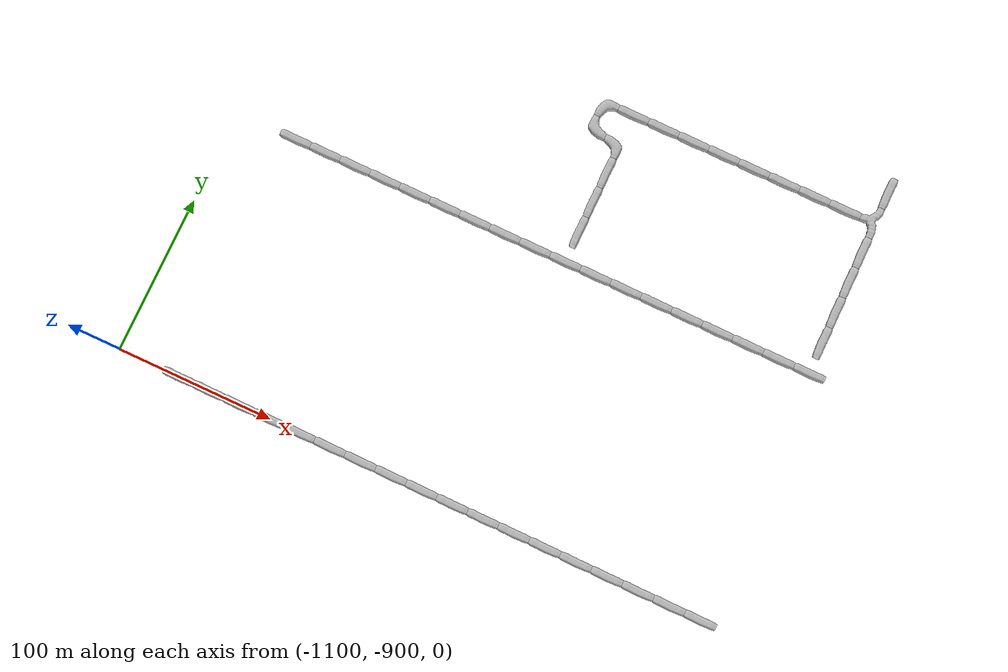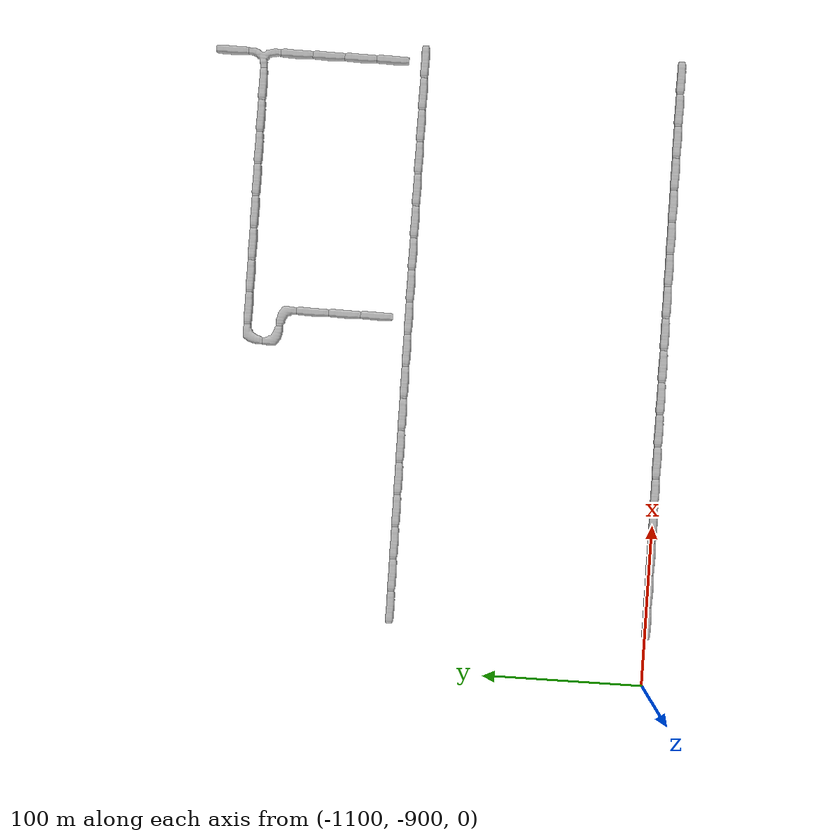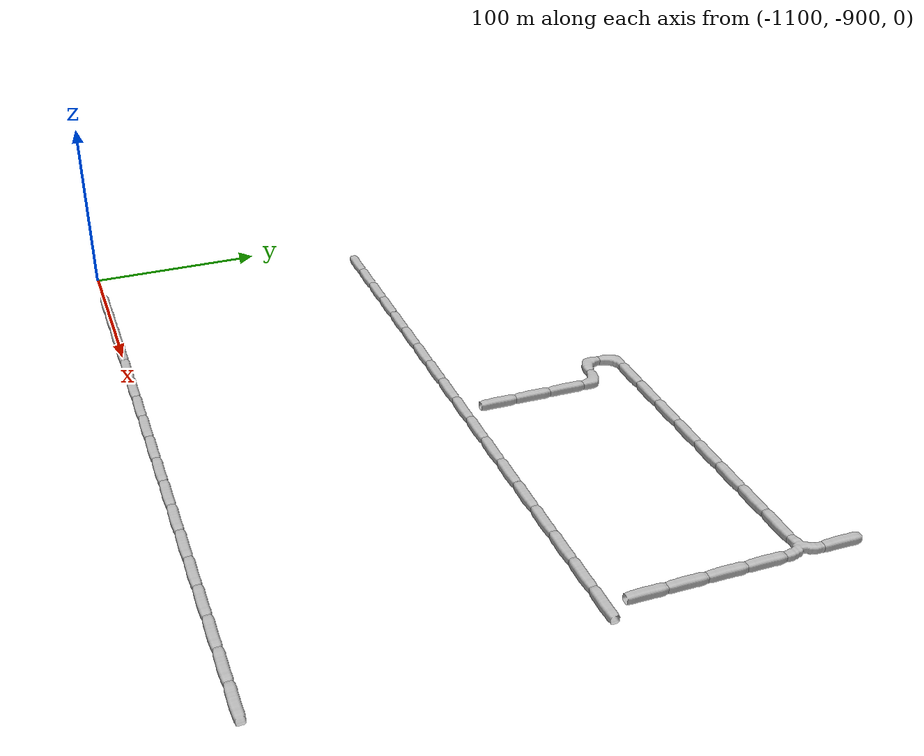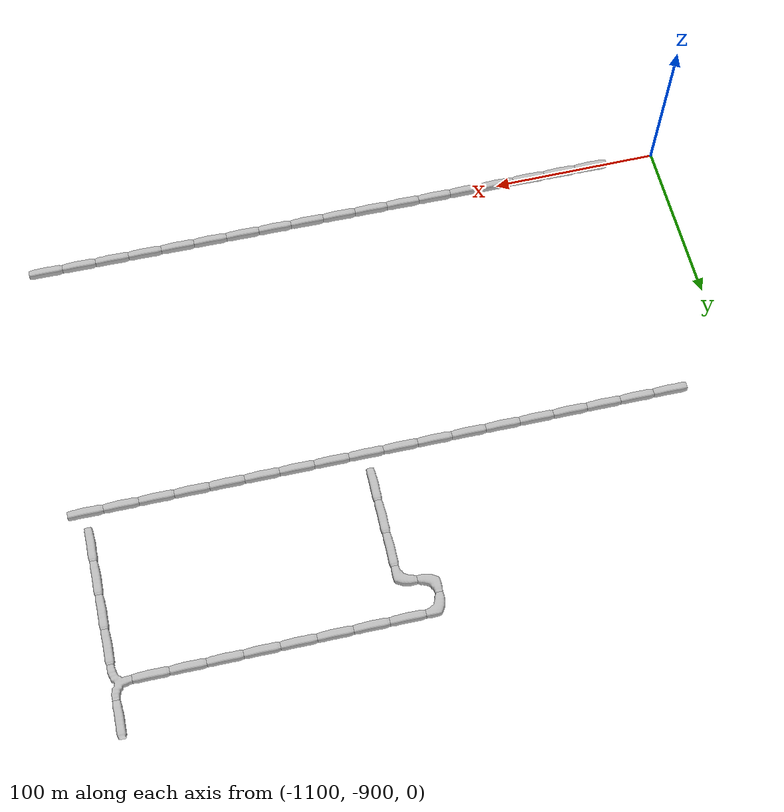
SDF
<sdf version="1.6">
 <world name="cave_32000_64">
  <include>
   <static>true</static>
   <name>cave_-36_-45</name>
   <pose>-720 -900 0 0 0 1.5707963267948966</pose>
   <uri>model://cave_straight_20m</uri>
  </include>
  <include>
   <static>true</static>
   <name>cave_-37_-45</name>
   <pose>-740 -900 0 0 0 1.5707963267948966</pose>
   <uri>model://cave_straight_20m</uri>
  </include>
  <include>
   <static>true</static>
   <name>cave_-38_-45</name>
   <pose>-760 -900 0 0 0 1.5707963267948966</pose>
   <uri>model://cave_straight_20m</uri>
  </include>
  <include>
   <static>true</static>
   <name>cave_-39_-45</name>
   <pose>-780 -900 0 0 0 1.5707963267948966</pose>
   <uri>model://cave_straight_20m</uri>
  </include>
  <include>
   <static>true</static>
   <name>cave_-40_-45</name>
   <pose>-800 -900 0 0 0 1.5707963267948966</pose>
   <uri>model://cave_straight_20m</uri>
  </include>
  <include>
   <static>true</static>
   <name>cave_-41_-45</name>
   <pose>-820 -900 0 0 0 1.5707963267948966</pose>
   <uri>model://cave_straight_20m</uri>
  </include>
  <include>
   <static>true</static>
   <name>cave_-42_-45</name>
   <pose>-840 -900 0 0 0 1.5707963267948966</pose>
   <uri>model://cave_straight_20m</uri>
  </include>
  <include>
   <static>true</static>
   <name>cave_-43_-45</name>
   <pose>-860 -900 0 0 0 1.5707963267948966</pose>
   <uri>model://cave_straight_20m</uri>
  </include>
  <include>
   <static>true</static>
   <name>cave_-44_-45</name>
   <pose>-880 -900 0 0 0 1.5707963267948966</pose>
   <uri>model://cave_straight_20m</uri>
  </include>
  <include>
   <static>true</static>
   <name>cave_-45_-45</name>
   <pose>-900 -900 0 0 0 1.5707963267948966</pose>
   <uri>model://cave_straight_20m</uri>
  </include>
  <include>
   <static>true</static>
   <name>cave_-46_-45</name>
   <pose>-920 -900 0 0 0 1.5707963267948966</pose>
   <uri>model://cave_straight_20m</uri>
  </include>
  <include>
   <static>true</static>
   <name>cave_-47_-45</name>
   <pose>-940 -900 0 0 0 1.5707963267948966</pose>
   <uri>model://cave_straight_20m</uri>
  </include>
  <include>
   <static>true</static>
   <name>cave_-48_-45</name>
   <pose>-960 -900 0 0 0 1.5707963267948966</pose>
   <uri>model://cave_straight_20m</uri>
  </include>
  <include>
   <static>true</static>
   <name>cave_-49_-45</name>
   <pose>-980 -900 0 0 0 1.5707963267948966</pose>
   <uri>model://cave_straight_20m</uri>
  </include>
  <include>
   <static>true</static>
   <name>cave_-50_-45</name>
   <pose>-1000 -900 0 0 0 1.5707963267948966</pose>
   <uri>model://cave_straight_20m</uri>
  </include>
  <include>
   <static>true</static>
   <name>cave_-51_-45</name>
   <pose>-1020 -900 0 0 0 1.5707963267948966</pose>
   <uri>model://cave_straight_20m</uri>
  </include>
  <include>
   <static>true</static>
   <name>cave_-52_-45</name>
   <pose>-1040 -900 0 0 0 1.5707963267948966</pose>
   <uri>model://cave_straight_20m</uri>
  </include>
  <include>
   <static>true</static>
   <name>cave_-53_-45</name>
   <pose>-1060 -900 0 0 0 1.5707963267948966</pose>
   <uri>model://cave_straight_20m</uri>
  </include>
  <include>
   <static>true</static>
   <name>cave_-36_-37</name>
   <pose>-720 -740 0 0 0 1.5707963267948966</pose>
   <uri>model://cave_straight_20m</uri>
  </include>
  <include>
   <static>true</static>
   <name>cave_-37_-37</name>
   <pose>-740 -740 0 0 0 1.5707963267948966</pose>
   <uri>model://cave_straight_20m</uri>
  </include>
  <include>
   <static>true</static>
   <name>cave_-38_-37</name>
   <pose>-760 -740 0 0 0 1.5707963267948966</pose>
   <uri>model://cave_straight_20m</uri>
  </include>
  <include>
   <static>true</static>
   <name>cave_-39_-37</name>
   <pose>-780 -740 0 0 0 1.5707963267948966</pose>
   <uri>model://cave_straight_20m</uri>
  </include>
  <include>
   <static>true</static>
   <name>cave_-40_-37</name>
   <pose>-800 -740 0 0 0 1.5707963267948966</pose>
   <uri>model://cave_straight_20m</uri>
  </include>
  <include>
   <static>true</static>
   <name>cave_-41_-37</name>
   <pose>-820 -740 0 0 0 1.5707963267948966</pose>
   <uri>model://cave_straight_20m</uri>
  </include>
  <include>
   <static>true</static>
   <name>cave_-42_-37</name>
   <pose>-840 -740 0 0 0 1.5707963267948966</pose>
   <uri>model://cave_straight_20m</uri>
  </include>
  <include>
   <static>true</static>
   <name>cave_-43_-37</name>
   <pose>-860 -740 0 0 0 1.5707963267948966</pose>
   <uri>model://cave_straight_20m</uri>
  </include>
  <include>
   <static>true</static>
   <name>cave_-44_-37</name>
   <pose>-880 -740 0 0 0 1.5707963267948966</pose>
   <uri>model://cave_straight_20m</uri>
  </include>
  <include>
   <static>true</static>
   <name>cave_-45_-37</name>
   <pose>-900 -740 0 0 0 1.5707963267948966</pose>
   <uri>model://cave_straight_20m</uri>
  </include>
  <include>
   <static>true</static>
   <name>cave_-46_-37</name>
   <pose>-920 -740 0 0 0 1.5707963267948966</pose>
   <uri>model://cave_straight_20m</uri>
  </include>
  <include>
   <static>true</static>
   <name>cave_-47_-37</name>
   <pose>-940 -740 0 0 0 1.5707963267948966</pose>
   <uri>model://cave_straight_20m</uri>
  </include>
  <include>
   <static>true</static>
   <name>cave_-48_-37</name>
   <pose>-960 -740 0 0 0 1.5707963267948966</pose>
   <uri>model://cave_straight_20m</uri>
  </include>
  <include>
   <static>true</static>
   <name>cave_-49_-37</name>
   <pose>-980 -740 0 0 0 1.5707963267948966</pose>
   <uri>model://cave_straight_20m</uri>
  </include>
  <include>
   <static>true</static>
   <name>cave_-50_-37</name>
   <pose>-1000 -740 0 0 0 1.5707963267948966</pose>
   <uri>model://cave_straight_20m</uri>
  </include>
  <include>
   <static>true</static>
   <name>cave_-51_-37</name>
   <pose>-1020 -740 0 0 0 1.5707963267948966</pose>
   <uri>model://cave_straight_20m</uri>
  </include>
  <include>
   <static>true</static>
   <name>cave_-52_-37</name>
   <pose>-1040 -740 0 0 0 1.5707963267948966</pose>
   <uri>model://cave_straight_20m</uri>
  </include>
  <include>
   <static>true</static>
   <name>cave_-53_-37</name>
   <pose>-1060 -740 0 0 0 1.5707963267948966</pose>
   <uri>model://cave_straight_20m</uri>
  </include>
  <include>
   <static>true</static>
   <name>cave_-36_-31</name>
   <pose>-720 -620 0 0 0 0.0</pose>
   <uri>model://cave_straight_20m</uri>
  </include>
  <include>
   <static>true</static>
   <name>cave_-36_-32</name>
   <pose>-720 -640 0 0 0 1.5707963267948966</pose>
   <uri>model://cave_3way_20m</uri>
  </include>
  <include>
   <static>true</static>
   <name>cave_-36_-33</name>
   <pose>-720 -660 0 0 0 0.0</pose>
   <uri>model://cave_straight_20m</uri>
  </include>
  <include>
   <static>true</static>
   <name>cave_-36_-34</name>
   <pose>-720 -680 0 0 0 0.0</pose>
   <uri>model://cave_straight_20m</uri>
  </include>
  <include>
   <static>true</static>
   <name>cave_-36_-35</name>
   <pose>-720 -700 0 0 0 0.0</pose>
   <uri>model://cave_straight_20m</uri>
  </include>
  <include>
   <static>true</static>
   <name>cave_-36_-36</name>
   <pose>-720 -720 0 0 0 0.0</pose>
   <uri>model://cave_straight_20m</uri>
  </include>
  <include>
   <static>true</static>
   <name>cave_-37_-32</name>
   <pose>-740 -640 0 0 0 1.5707963267948966</pose>
   <uri>model://cave_straight_20m</uri>
  </include>
  <include>
   <static>true</static>
   <name>cave_-38_-32</name>
   <pose>-760 -640 0 0 0 1.5707963267948966</pose>
   <uri>model://cave_straight_20m</uri>
  </include>
  <include>
   <static>true</static>
   <name>cave_-39_-32</name>
   <pose>-780 -640 0 0 0 1.5707963267948966</pose>
   <uri>model://cave_straight_20m</uri>
  </include>
  <include>
   <static>true</static>
   <name>cave_-40_-32</name>
   <pose>-800 -640 0 0 0 1.5707963267948966</pose>
   <uri>model://cave_straight_20m</uri>
  </include>
  <include>
   <static>true</static>
   <name>cave_-41_-32</name>
   <pose>-820 -640 0 0 0 1.5707963267948966</pose>
   <uri>model://cave_straight_20m</uri>
  </include>
  <include>
   <static>true</static>
   <name>cave_-42_-32</name>
   <pose>-840 -640 0 0 0 1.5707963267948966</pose>
   <uri>model://cave_straight_20m</uri>
  </include>
  <include>
   <static>true</static>
   <name>cave_-43_-32</name>
   <pose>-860 -640 0 0 0 1.5707963267948966</pose>
   <uri>model://cave_straight_20m</uri>
  </include>
  <include>
   <static>true</static>
   <name>cave_-44_-32</name>
   <pose>-880 -640 0 0 0 1.5707963267948966</pose>
   <uri>model://cave_straight_20m</uri>
  </include>
  <include>
   <static>true</static>
   <name>cave_-45_-32</name>
   <pose>-900 -640 0 0 0 -1.5707963267948966</pose>
   <uri>model://cave_L_20m</uri>
  </include>
  <include>
   <static>true</static>
   <name>cave_-45_-33</name>
   <pose>-900 -660 0 0 0 0.0</pose>
   <uri>model://cave_L_20m</uri>
  </include>
  <include>
   <static>true</static>
   <name>cave_-44_-33</name>
   <pose>-880 -660 0 0 0 3.141592653589793</pose>
   <uri>model://cave_L_20m</uri>
  </include>
  <include>
   <static>true</static>
   <name>cave_-44_-34</name>
   <pose>-880 -680 0 0 0 0.0</pose>
   <uri>model://cave_straight_20m</uri>
  </include>
  <include>
   <static>true</static>
   <name>cave_-44_-35</name>
   <pose>-880 -700 0 0 0 0.0</pose>
   <uri>model://cave_straight_20m</uri>
  </include>
  <include>
   <static>true</static>
   <name>cave_-44_-36</name>
   <pose>-880 -720 0 0 0 0.0</pose>
   <uri>model://cave_straight_20m</uri>
  </include>
 </world>
</sdf>
